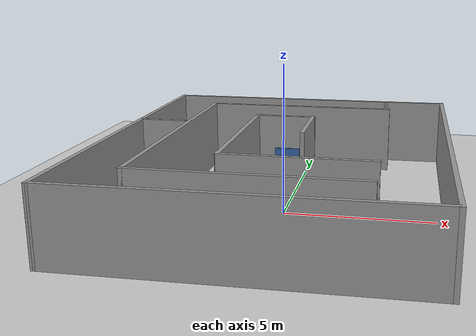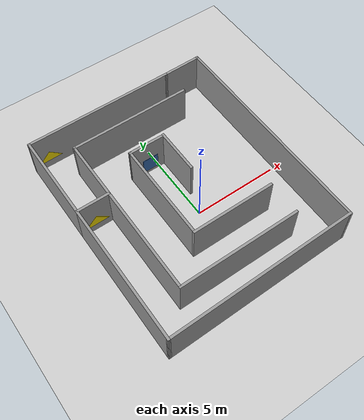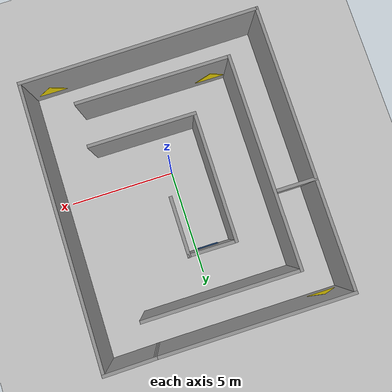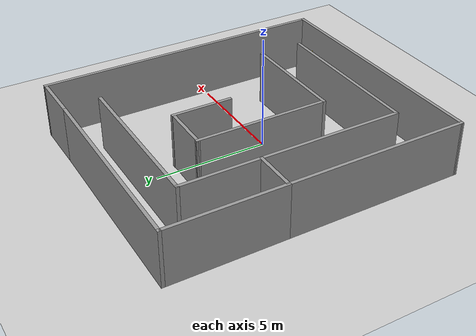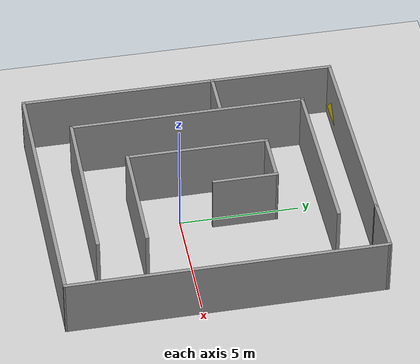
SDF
<sdf version="1.6">
 <world name="default">
  <scene><ambient>0.4 0.4 0.4 1</ambient><background>0.7 0.7 0.7 1</background><shadows>1</shadows></scene>
  <light name="sun" type="directional">
   <pose>0 0 10 0 -0 0</pose>
   <diffuse>0.8 0.8 0.8 1</diffuse>
   <specular>0.2 0.2 0.2 1</specular>
   <attenuation>
    <range>1000</range>
    <constant>0.9</constant>
    <linear>0.01</linear>
    <quadratic>0.001</quadratic>
   </attenuation>
   <direction>-0.5 0.1 -0.9</direction>
  </light>
  <model name="ground_plane">
   <static>1</static>
   <link name="link">
    <collision name="collision">
     <geometry><plane><normal>0 0 1</normal><size>100 100</size></plane></geometry>
     <surface>
      <contact><collide_bitmask>65535</collide_bitmask></contact>
      <friction><ode><mu>100</mu><mu2>50</mu2></ode></friction>
     </surface>
    </collision>
    <visual name="visual">
     <cast_shadows>0</cast_shadows>
     <geometry><plane><normal>0 0 1</normal><size>100 100</size></plane></geometry>
     <material>
      <script><uri>file://media/materials/scripts/gazebo.material</uri><name>Gazebo/Grey</name></script>
     </material>
    </visual>
   </link>
  </model>
  <physics name="default_physics" default="0" type="ode">
   <real_time_update_rate>1000</real_time_update_rate>
   <max_step_size>0.001</max_step_size>
   <real_time_factor>1</real_time_factor>
   <ode>
    <solver>
     <type>quick</type>
     <iters>150</iters>
     <precon_iters>0</precon_iters>
     <sor>1.4</sor>
     <use_dynamic_moi_rescaling>1</use_dynamic_moi_rescaling>
    </solver>
    <constraints>
     <cfm>1e-05</cfm>
     <erp>0.2</erp>
     <contact_max_correcting_vel>2000</contact_max_correcting_vel>
     <contact_surface_layer>0.01</contact_surface_layer>
    </constraints>
   </ode>
  </physics>
  <gravity>0 0 -9.8</gravity>
  <magnetic_field>6e-06 2.3e-05 -4.2e-05</magnetic_field>
  <atmosphere type="adiabatic"/>
  <spherical_coordinates>
   <surface_model>EARTH_WGS84</surface_model>
   <latitude_deg>0</latitude_deg>
   <longitude_deg>0</longitude_deg>
   <elevation>0</elevation>
   <heading_deg>0</heading_deg>
  </spherical_coordinates>
  <model name="basic_city">
   <link name="Wall_0">
    <pose>0.990731 -2.85517 0 0 -0 0</pose>
    <visual name="Wall_0_Visual">
     <pose>0 0 1.25 0 -0 0</pose>
     <geometry><box><size>5 0.15 2.5</size></box></geometry>
     <material>
      <script><uri>file://media/materials/scripts/gazebo.material</uri><name>Gazebo/Grey</name></script>
      <ambient>1 1 1 1</ambient>
      <shader type="pixel"/>
     </material>
     <meta><layer>0</layer></meta>
    </visual>
    <collision name="Wall_0_Collision">
     <pose>0 0 1.25 0 -0 0</pose>
     <geometry><box><size>5 0.15 2.5</size></box></geometry>
     <surface>
      <friction>
       <ode><mu>1</mu><mu2>1</mu2><fdir1>0 0 0</fdir1><slip1>0</slip1><slip2>0</slip2></ode>
       <torsional>
        <coefficient>1</coefficient>
        <patch_radius>0</patch_radius>
        <surface_radius>0</surface_radius>
        <use_patch_radius>1</use_patch_radius>
        <ode><slip>0</slip></ode>
       </torsional>
      </friction>
      <bounce><restitution_coefficient>0</restitution_coefficient><threshold>1e+06</threshold></bounce>
      <contact>
       <collide_without_contact>0</collide_without_contact>
       <collide_without_contact_bitmask>1</collide_without_contact_bitmask>
       <collide_bitmask>1</collide_bitmask>
       <ode>
        <soft_cfm>0</soft_cfm>
        <soft_erp>0.2</soft_erp>
        <kp>1e+13</kp>
        <kd>1</kd>
        <max_vel>0.01</max_vel>
        <min_depth>0</min_depth>
       </ode>
       <bullet>
        <split_impulse>1</split_impulse>
        <split_impulse_penetration_threshold>-0.01</split_impulse_penetration_threshold>
        <soft_cfm>0</soft_cfm>
        <soft_erp>0.2</soft_erp>
        <kp>1e+13</kp>
        <kd>1</kd>
       </bullet>
      </contact>
     </surface>
    </collision>
   </link>
   <link name="Wall_10">
    <pose>-0.134269 -4.85517 0 0 -0 0</pose>
    <visual name="Wall_10_Visual">
     <pose>0 0 1.25 0 -0 0</pose>
     <geometry><box><size>7.25 0.15 2.5</size></box></geometry>
     <material>
      <script><uri>file://media/materials/scripts/gazebo.material</uri><name>Gazebo/Grey</name></script>
      <ambient>1 1 1 1</ambient>
      <shader type="pixel"/>
     </material>
     <meta><layer>0</layer></meta>
    </visual>
    <collision name="Wall_10_Collision">
     <pose>0 0 1.25 0 -0 0</pose>
     <geometry><box><size>7.25 0.15 2.5</size></box></geometry>
     <surface>
      <friction>
       <ode><mu>1</mu><mu2>1</mu2><fdir1>0 0 0</fdir1><slip1>0</slip1><slip2>0</slip2></ode>
       <torsional>
        <coefficient>1</coefficient>
        <patch_radius>0</patch_radius>
        <surface_radius>0</surface_radius>
        <use_patch_radius>1</use_patch_radius>
        <ode><slip>0</slip></ode>
       </torsional>
      </friction>
      <bounce><restitution_coefficient>0</restitution_coefficient><threshold>1e+06</threshold></bounce>
      <contact>
       <collide_without_contact>0</collide_without_contact>
       <collide_without_contact_bitmask>1</collide_without_contact_bitmask>
       <collide_bitmask>1</collide_bitmask>
       <ode>
        <soft_cfm>0</soft_cfm>
        <soft_erp>0.2</soft_erp>
        <kp>1e+13</kp>
        <kd>1</kd>
        <max_vel>0.01</max_vel>
        <min_depth>0</min_depth>
       </ode>
       <bullet>
        <split_impulse>1</split_impulse>
        <split_impulse_penetration_threshold>-0.01</split_impulse_penetration_threshold>
        <soft_cfm>0</soft_cfm>
        <soft_erp>0.2</soft_erp>
        <kp>1e+13</kp>
        <kd>1</kd>
       </bullet>
      </contact>
     </surface>
    </collision>
   </link>
   <link name="Wall_12">
    <pose>-1.13803 6.58511 0 0 -0 3.14159</pose>
    <visual name="Wall_12_Visual">
     <pose>0 0 1.25 0 -0 0</pose>
     <geometry><box><size>9 0.15 2.5</size></box></geometry>
     <material>
      <script><uri>file://media/materials/scripts/gazebo.material</uri><name>Gazebo/Grey</name></script>
      <ambient>1 1 1 1</ambient>
      <shader type="pixel"/>
     </material>
     <meta><layer>0</layer></meta>
    </visual>
    <collision name="Wall_12_Collision">
     <pose>0 0 1.25 0 -0 0</pose>
     <geometry><box><size>9 0.15 2.5</size></box></geometry>
     <surface>
      <friction>
       <ode><mu>1</mu><mu2>1</mu2><fdir1>0 0 0</fdir1><slip1>0</slip1><slip2>0</slip2></ode>
       <torsional>
        <coefficient>1</coefficient>
        <patch_radius>0</patch_radius>
        <surface_radius>0</surface_radius>
        <use_patch_radius>1</use_patch_radius>
        <ode><slip>0</slip></ode>
       </torsional>
      </friction>
      <bounce><restitution_coefficient>0</restitution_coefficient><threshold>1e+06</threshold></bounce>
      <contact>
       <collide_without_contact>0</collide_without_contact>
       <collide_without_contact_bitmask>1</collide_without_contact_bitmask>
       <collide_bitmask>1</collide_bitmask>
       <ode>
        <soft_cfm>0</soft_cfm>
        <soft_erp>0.2</soft_erp>
        <kp>1e+13</kp>
        <kd>1</kd>
        <max_vel>0.01</max_vel>
        <min_depth>0</min_depth>
       </ode>
       <bullet>
        <split_impulse>1</split_impulse>
        <split_impulse_penetration_threshold>-0.01</split_impulse_penetration_threshold>
        <soft_cfm>0</soft_cfm>
        <soft_erp>0.2</soft_erp>
        <kp>1e+13</kp>
        <kd>1</kd>
       </bullet>
      </contact>
     </surface>
    </collision>
   </link>
   <link name="Wall_13">
    <pose>-5.56303 4.03511 0 0 0 -1.5708</pose>
    <visual name="Wall_13_Visual">
     <pose>0 0 1.25 0 -0 0</pose>
     <geometry><box><size>5.25 0.15 2.5</size></box></geometry>
     <material>
      <script><uri>file://media/materials/scripts/gazebo.material</uri><name>Gazebo/Grey</name></script>
      <ambient>1 1 1 1</ambient>
      <shader type="pixel"/>
     </material>
     <meta><layer>0</layer></meta>
    </visual>
    <collision name="Wall_13_Collision">
     <pose>0 0 1.25 0 -0 0</pose>
     <geometry><box><size>5.25 0.15 2.5</size></box></geometry>
     <surface>
      <friction>
       <ode><mu>1</mu><mu2>1</mu2><fdir1>0 0 0</fdir1><slip1>0</slip1><slip2>0</slip2></ode>
       <torsional>
        <coefficient>1</coefficient>
        <patch_radius>0</patch_radius>
        <surface_radius>0</surface_radius>
        <use_patch_radius>1</use_patch_radius>
        <ode><slip>0</slip></ode>
       </torsional>
      </friction>
      <bounce><restitution_coefficient>0</restitution_coefficient><threshold>1e+06</threshold></bounce>
      <contact>
       <collide_without_contact>0</collide_without_contact>
       <collide_without_contact_bitmask>1</collide_without_contact_bitmask>
       <collide_bitmask>1</collide_bitmask>
       <ode>
        <soft_cfm>0</soft_cfm>
        <soft_erp>0.2</soft_erp>
        <kp>1e+13</kp>
        <kd>1</kd>
        <max_vel>0.01</max_vel>
        <min_depth>0</min_depth>
       </ode>
       <bullet>
        <split_impulse>1</split_impulse>
        <split_impulse_penetration_threshold>-0.01</split_impulse_penetration_threshold>
        <soft_cfm>0</soft_cfm>
        <soft_erp>0.2</soft_erp>
        <kp>1e+13</kp>
        <kd>1</kd>
       </bullet>
      </contact>
     </surface>
    </collision>
   </link>
   <link name="Wall_14">
    <pose>-4.63803 1.48511 0 0 -0 0</pose>
    <visual name="Wall_14_Visual">
     <pose>0 0 1.25 0 -0 0</pose>
     <geometry><box><size>2 0.15 2.5</size></box></geometry>
     <material>
      <script><uri>file://media/materials/scripts/gazebo.material</uri><name>Gazebo/Grey</name></script>
      <ambient>1 1 1 1</ambient>
      <shader type="pixel"/>
     </material>
     <meta><layer>0</layer></meta>
    </visual>
    <collision name="Wall_14_Collision">
     <pose>0 0 1.25 0 -0 0</pose>
     <geometry><box><size>2 0.15 2.5</size></box></geometry>
     <surface>
      <friction>
       <ode><mu>1</mu><mu2>1</mu2><fdir1>0 0 0</fdir1><slip1>0</slip1><slip2>0</slip2></ode>
       <torsional>
        <coefficient>1</coefficient>
        <patch_radius>0</patch_radius>
        <surface_radius>0</surface_radius>
        <use_patch_radius>1</use_patch_radius>
        <ode><slip>0</slip></ode>
       </torsional>
      </friction>
      <bounce><restitution_coefficient>0</restitution_coefficient><threshold>1e+06</threshold></bounce>
      <contact>
       <collide_without_contact>0</collide_without_contact>
       <collide_without_contact_bitmask>1</collide_without_contact_bitmask>
       <collide_bitmask>1</collide_bitmask>
       <ode>
        <soft_cfm>0</soft_cfm>
        <soft_erp>0.2</soft_erp>
        <kp>1e+13</kp>
        <kd>1</kd>
        <max_vel>0.01</max_vel>
        <min_depth>0</min_depth>
       </ode>
       <bullet>
        <split_impulse>1</split_impulse>
        <split_impulse_penetration_threshold>-0.01</split_impulse_penetration_threshold>
        <soft_cfm>0</soft_cfm>
        <soft_erp>0.2</soft_erp>
        <kp>1e+13</kp>
        <kd>1</kd>
       </bullet>
      </contact>
     </surface>
    </collision>
   </link>
   <link name="Wall_16">
    <pose>-5.56303 -2.56489 0 0 0 -1.5708</pose>
    <visual name="Wall_16_Visual">
     <pose>0 0 1.25 0 -0 0</pose>
     <geometry><box><size>8.25 0.15 2.5</size></box></geometry>
     <material>
      <script><uri>file://media/materials/scripts/gazebo.material</uri><name>Gazebo/Grey</name></script>
      <ambient>1 1 1 1</ambient>
      <shader type="pixel"/>
     </material>
     <meta><layer>0</layer></meta>
    </visual>
    <collision name="Wall_16_Collision">
     <pose>0 0 1.25 0 -0 0</pose>
     <geometry><box><size>8.25 0.15 2.5</size></box></geometry>
     <surface>
      <friction>
       <ode><mu>1</mu><mu2>1</mu2><fdir1>0 0 0</fdir1><slip1>0</slip1><slip2>0</slip2></ode>
       <torsional>
        <coefficient>1</coefficient>
        <patch_radius>0</patch_radius>
        <surface_radius>0</surface_radius>
        <use_patch_radius>1</use_patch_radius>
        <ode><slip>0</slip></ode>
       </torsional>
      </friction>
      <bounce><restitution_coefficient>0</restitution_coefficient><threshold>1e+06</threshold></bounce>
      <contact>
       <collide_without_contact>0</collide_without_contact>
       <collide_without_contact_bitmask>1</collide_without_contact_bitmask>
       <collide_bitmask>1</collide_bitmask>
       <ode>
        <soft_cfm>0</soft_cfm>
        <soft_erp>0.2</soft_erp>
        <kp>1e+13</kp>
        <kd>1</kd>
        <max_vel>0.01</max_vel>
        <min_depth>0</min_depth>
       </ode>
       <bullet>
        <split_impulse>1</split_impulse>
        <split_impulse_penetration_threshold>-0.01</split_impulse_penetration_threshold>
        <soft_cfm>0</soft_cfm>
        <soft_erp>0.2</soft_erp>
        <kp>1e+13</kp>
        <kd>1</kd>
       </bullet>
      </contact>
     </surface>
    </collision>
   </link>
   <link name="Wall_17">
    <pose>-6.2e-05 -6.54788 0 0 -0 0.012045</pose>
    <visual name="Wall_17_Visual">
     <pose>0 0 1.25 0 -0 0</pose>
     <geometry><box><size>11.2766 0.15 2.5</size></box></geometry>
     <material>
      <script><uri>file://media/materials/scripts/gazebo.material</uri><name>Gazebo/Grey</name></script>
      <ambient>1 1 1 1</ambient>
      <shader type="pixel"/>
     </material>
     <meta><layer>0</layer></meta>
    </visual>
    <collision name="Wall_17_Collision">
     <pose>0 0 1.25 0 -0 0</pose>
     <geometry><box><size>11.2766 0.15 2.5</size></box></geometry>
     <surface>
      <friction>
       <ode><mu>1</mu><mu2>1</mu2><fdir1>0 0 0</fdir1><slip1>0</slip1><slip2>0</slip2></ode>
       <torsional>
        <coefficient>1</coefficient>
        <patch_radius>0</patch_radius>
        <surface_radius>0</surface_radius>
        <use_patch_radius>1</use_patch_radius>
        <ode><slip>0</slip></ode>
       </torsional>
      </friction>
      <bounce><restitution_coefficient>0</restitution_coefficient><threshold>1e+06</threshold></bounce>
      <contact>
       <collide_without_contact>0</collide_without_contact>
       <collide_without_contact_bitmask>1</collide_without_contact_bitmask>
       <collide_bitmask>1</collide_bitmask>
       <ode>
        <soft_cfm>0</soft_cfm>
        <soft_erp>0.2</soft_erp>
        <kp>1e+13</kp>
        <kd>1</kd>
        <max_vel>0.01</max_vel>
        <min_depth>0</min_depth>
       </ode>
       <bullet>
        <split_impulse>1</split_impulse>
        <split_impulse_penetration_threshold>-0.01</split_impulse_penetration_threshold>
        <soft_cfm>0</soft_cfm>
        <soft_erp>0.2</soft_erp>
        <kp>1e+13</kp>
        <kd>1</kd>
       </bullet>
      </contact>
     </surface>
    </collision>
   </link>
   <link name="Wall_18">
    <pose>5.56291 0.064812 0 0 -0 1.5708</pose>
    <visual name="Wall_18_Visual">
     <pose>0 0 1.25 0 -0 0</pose>
     <geometry><box><size>13.25 0.15 2.5</size></box></geometry>
     <material>
      <script><uri>file://media/materials/scripts/gazebo.material</uri><name>Gazebo/Grey</name></script>
      <ambient>1 1 1 1</ambient>
      <shader type="pixel"/>
     </material>
     <meta><layer>0</layer></meta>
    </visual>
    <collision name="Wall_18_Collision">
     <pose>0 0 1.25 0 -0 0</pose>
     <geometry><box><size>13.25 0.15 2.5</size></box></geometry>
     <surface>
      <friction>
       <ode><mu>1</mu><mu2>1</mu2><fdir1>0 0 0</fdir1><slip1>0</slip1><slip2>0</slip2></ode>
       <torsional>
        <coefficient>1</coefficient>
        <patch_radius>0</patch_radius>
        <surface_radius>0</surface_radius>
        <use_patch_radius>1</use_patch_radius>
        <ode><slip>0</slip></ode>
       </torsional>
      </friction>
      <bounce><restitution_coefficient>0</restitution_coefficient><threshold>1e+06</threshold></bounce>
      <contact>
       <collide_without_contact>0</collide_without_contact>
       <collide_without_contact_bitmask>1</collide_without_contact_bitmask>
       <collide_bitmask>1</collide_bitmask>
       <ode>
        <soft_cfm>0</soft_cfm>
        <soft_erp>0.2</soft_erp>
        <kp>1e+13</kp>
        <kd>1</kd>
        <max_vel>0.01</max_vel>
        <min_depth>0</min_depth>
       </ode>
       <bullet>
        <split_impulse>1</split_impulse>
        <split_impulse_penetration_threshold>-0.01</split_impulse_penetration_threshold>
        <soft_cfm>0</soft_cfm>
        <soft_erp>0.2</soft_erp>
        <kp>1e+13</kp>
        <kd>1</kd>
       </bullet>
      </contact>
     </surface>
    </collision>
   </link>
   <link name="Wall_21">
    <pose>4.42494 6.59996 0 0 -0 0.013048</pose>
    <visual name="Wall_21_Visual">
     <pose>0 0 1.25 0 -0 0</pose>
     <geometry><box><size>2.42613 0.15 2.5</size></box></geometry>
     <material>
      <script><uri>file://media/materials/scripts/gazebo.material</uri><name>Gazebo/Grey</name></script>
      <ambient>1 1 1 1</ambient>
      <shader type="pixel"/>
     </material>
     <meta><layer>0</layer></meta>
    </visual>
    <collision name="Wall_21_Collision">
     <pose>0 0 1.25 0 -0 0</pose>
     <geometry><box><size>2.42613 0.15 2.5</size></box></geometry>
     <surface>
      <friction>
       <ode><mu>1</mu><mu2>1</mu2><fdir1>0 0 0</fdir1><slip1>0</slip1><slip2>0</slip2></ode>
       <torsional>
        <coefficient>1</coefficient>
        <patch_radius>0</patch_radius>
        <surface_radius>0</surface_radius>
        <use_patch_radius>1</use_patch_radius>
        <ode><slip>0</slip></ode>
       </torsional>
      </friction>
      <bounce><restitution_coefficient>0</restitution_coefficient><threshold>1e+06</threshold></bounce>
      <contact>
       <collide_without_contact>0</collide_without_contact>
       <collide_without_contact_bitmask>1</collide_without_contact_bitmask>
       <collide_bitmask>1</collide_bitmask>
       <ode>
        <soft_cfm>0</soft_cfm>
        <soft_erp>0.2</soft_erp>
        <kp>1e+13</kp>
        <kd>1</kd>
        <max_vel>0.01</max_vel>
        <min_depth>0</min_depth>
       </ode>
       <bullet>
        <split_impulse>1</split_impulse>
        <split_impulse_penetration_threshold>-0.01</split_impulse_penetration_threshold>
        <soft_cfm>0</soft_cfm>
        <soft_erp>0.2</soft_erp>
        <kp>1e+13</kp>
        <kd>1</kd>
       </bullet>
      </contact>
     </surface>
    </collision>
   </link>
   <link name="Wall_3">
    <pose>-1.43427 0.069831 0 0 -0 1.5708</pose>
    <visual name="Wall_3_Visual">
     <pose>0 0 1.25 0 -0 0</pose>
     <geometry><box><size>6 0.15 2.5</size></box></geometry>
     <material>
      <script><uri>file://media/materials/scripts/gazebo.material</uri><name>Gazebo/Grey</name></script>
      <ambient>1 1 1 1</ambient>
      <shader type="pixel"/>
     </material>
     <meta><layer>0</layer></meta>
    </visual>
    <collision name="Wall_3_Collision">
     <pose>0 0 1.25 0 -0 0</pose>
     <geometry><box><size>6 0.15 2.5</size></box></geometry>
     <surface>
      <friction>
       <ode><mu>1</mu><mu2>1</mu2><fdir1>0 0 0</fdir1><slip1>0</slip1><slip2>0</slip2></ode>
       <torsional>
        <coefficient>1</coefficient>
        <patch_radius>0</patch_radius>
        <surface_radius>0</surface_radius>
        <use_patch_radius>1</use_patch_radius>
        <ode><slip>0</slip></ode>
       </torsional>
      </friction>
      <bounce><restitution_coefficient>0</restitution_coefficient><threshold>1e+06</threshold></bounce>
      <contact>
       <collide_without_contact>0</collide_without_contact>
       <collide_without_contact_bitmask>1</collide_without_contact_bitmask>
       <collide_bitmask>1</collide_bitmask>
       <ode>
        <soft_cfm>0</soft_cfm>
        <soft_erp>0.2</soft_erp>
        <kp>1e+13</kp>
        <kd>1</kd>
        <max_vel>0.01</max_vel>
        <min_depth>0</min_depth>
       </ode>
       <bullet>
        <split_impulse>1</split_impulse>
        <split_impulse_penetration_threshold>-0.01</split_impulse_penetration_threshold>
        <soft_cfm>0</soft_cfm>
        <soft_erp>0.2</soft_erp>
        <kp>1e+13</kp>
        <kd>1</kd>
       </bullet>
      </contact>
     </surface>
    </collision>
   </link>
   <link name="Wall_4">
    <pose>-0.374488 2.98609 0 0 0 -0.008252</pose>
    <visual name="Wall_4_Visual">
     <pose>0 0 1.25 0 -0 0</pose>
     <geometry><box><size>2.26964 0.15 2.5</size></box></geometry>
     <material>
      <script><uri>file://media/materials/scripts/gazebo.material</uri><name>Gazebo/Grey</name></script>
      <ambient>1 1 1 1</ambient>
      <shader type="pixel"/>
     </material>
     <meta><layer>0</layer></meta>
    </visual>
    <collision name="Wall_4_Collision">
     <pose>0 0 1.25 0 -0 0</pose>
     <geometry><box><size>2.26964 0.15 2.5</size></box></geometry>
     <surface>
      <friction>
       <ode><mu>1</mu><mu2>1</mu2><fdir1>0 0 0</fdir1><slip1>0</slip1><slip2>0</slip2></ode>
       <torsional>
        <coefficient>1</coefficient>
        <patch_radius>0</patch_radius>
        <surface_radius>0</surface_radius>
        <use_patch_radius>1</use_patch_radius>
        <ode><slip>0</slip></ode>
       </torsional>
      </friction>
      <bounce><restitution_coefficient>0</restitution_coefficient><threshold>1e+06</threshold></bounce>
      <contact>
       <collide_without_contact>0</collide_without_contact>
       <collide_without_contact_bitmask>1</collide_without_contact_bitmask>
       <collide_bitmask>1</collide_bitmask>
       <ode>
        <soft_cfm>0</soft_cfm>
        <soft_erp>0.2</soft_erp>
        <kp>1e+13</kp>
        <kd>1</kd>
        <max_vel>0.01</max_vel>
        <min_depth>0</min_depth>
       </ode>
       <bullet>
        <split_impulse>1</split_impulse>
        <split_impulse_penetration_threshold>-0.01</split_impulse_penetration_threshold>
        <soft_cfm>0</soft_cfm>
        <soft_erp>0.2</soft_erp>
        <kp>1e+13</kp>
        <kd>1</kd>
       </bullet>
      </contact>
     </surface>
    </collision>
   </link>
   <link name="Wall_5">
    <pose>0.685294 1.69483 0 0 0 -1.5708</pose>
    <visual name="Wall_5_Visual">
     <pose>0 0 1.25 0 -0 0</pose>
     <geometry><box><size>2.75 0.15 2.5</size></box></geometry>
     <material>
      <script><uri>file://media/materials/scripts/gazebo.material</uri><name>Gazebo/Grey</name></script>
      <ambient>1 1 1 1</ambient>
      <shader type="pixel"/>
     </material>
     <meta><layer>0</layer></meta>
    </visual>
    <collision name="Wall_5_Collision">
     <pose>0 0 1.25 0 -0 0</pose>
     <geometry><box><size>2.75 0.15 2.5</size></box></geometry>
     <surface>
      <friction>
       <ode><mu>1</mu><mu2>1</mu2><fdir1>0 0 0</fdir1><slip1>0</slip1><slip2>0</slip2></ode>
       <torsional>
        <coefficient>1</coefficient>
        <patch_radius>0</patch_radius>
        <surface_radius>0</surface_radius>
        <use_patch_radius>1</use_patch_radius>
        <ode><slip>0</slip></ode>
       </torsional>
      </friction>
      <bounce><restitution_coefficient>0</restitution_coefficient><threshold>1e+06</threshold></bounce>
      <contact>
       <collide_without_contact>0</collide_without_contact>
       <collide_without_contact_bitmask>1</collide_without_contact_bitmask>
       <collide_bitmask>1</collide_bitmask>
       <ode>
        <soft_cfm>0</soft_cfm>
        <soft_erp>0.2</soft_erp>
        <kp>1e+13</kp>
        <kd>1</kd>
        <max_vel>0.01</max_vel>
        <min_depth>0</min_depth>
       </ode>
       <bullet>
        <split_impulse>1</split_impulse>
        <split_impulse_penetration_threshold>-0.01</split_impulse_penetration_threshold>
        <soft_cfm>0</soft_cfm>
        <soft_erp>0.2</soft_erp>
        <kp>1e+13</kp>
        <kd>1</kd>
       </bullet>
      </contact>
     </surface>
    </collision>
   </link>
   <link name="Wall_8">
    <pose>-0.134269 4.99483 0 0 -0 3.14159</pose>
    <visual name="Wall_8_Visual">
     <pose>0 0 1.25 0 -0 0</pose>
     <geometry><box><size>7.25 0.15 2.5</size></box></geometry>
     <material>
      <script><uri>file://media/materials/scripts/gazebo.material</uri><name>Gazebo/Grey</name></script>
      <ambient>1 1 1 1</ambient>
      <shader type="pixel"/>
     </material>
     <meta><layer>0</layer></meta>
    </visual>
    <collision name="Wall_8_Collision">
     <pose>0 0 1.25 0 -0 0</pose>
     <geometry><box><size>7.25 0.15 2.5</size></box></geometry>
     <surface>
      <friction>
       <ode><mu>1</mu><mu2>1</mu2><fdir1>0 0 0</fdir1><slip1>0</slip1><slip2>0</slip2></ode>
       <torsional>
        <coefficient>1</coefficient>
        <patch_radius>0</patch_radius>
        <surface_radius>0</surface_radius>
        <use_patch_radius>1</use_patch_radius>
        <ode><slip>0</slip></ode>
       </torsional>
      </friction>
      <bounce><restitution_coefficient>0</restitution_coefficient><threshold>1e+06</threshold></bounce>
      <contact>
       <collide_without_contact>0</collide_without_contact>
       <collide_without_contact_bitmask>1</collide_without_contact_bitmask>
       <collide_bitmask>1</collide_bitmask>
       <ode>
        <soft_cfm>0</soft_cfm>
        <soft_erp>0.2</soft_erp>
        <kp>1e+13</kp>
        <kd>1</kd>
        <max_vel>0.01</max_vel>
        <min_depth>0</min_depth>
       </ode>
       <bullet>
        <split_impulse>1</split_impulse>
        <split_impulse_penetration_threshold>-0.01</split_impulse_penetration_threshold>
        <soft_cfm>0</soft_cfm>
        <soft_erp>0.2</soft_erp>
        <kp>1e+13</kp>
        <kd>1</kd>
       </bullet>
      </contact>
     </surface>
    </collision>
   </link>
   <link name="Wall_9">
    <pose>-3.68427 0.069831 0 0 0 -1.5708</pose>
    <visual name="Wall_9_Visual">
     <pose>0 0 1.25 0 -0 0</pose>
     <geometry><box><size>10 0.15 2.5</size></box></geometry>
     <material>
      <script><uri>file://media/materials/scripts/gazebo.material</uri><name>Gazebo/Grey</name></script>
      <ambient>1 1 1 1</ambient>
      <shader type="pixel"/>
     </material>
     <meta><layer>0</layer></meta>
    </visual>
    <collision name="Wall_9_Collision">
     <pose>0 0 1.25 0 -0 0</pose>
     <geometry><box><size>10 0.15 2.5</size></box></geometry>
     <surface>
      <friction>
       <ode><mu>1</mu><mu2>1</mu2><fdir1>0 0 0</fdir1><slip1>0</slip1><slip2>0</slip2></ode>
       <torsional>
        <coefficient>1</coefficient>
        <patch_radius>0</patch_radius>
        <surface_radius>0</surface_radius>
        <use_patch_radius>1</use_patch_radius>
        <ode><slip>0</slip></ode>
       </torsional>
      </friction>
      <bounce><restitution_coefficient>0</restitution_coefficient><threshold>1e+06</threshold></bounce>
      <contact>
       <collide_without_contact>0</collide_without_contact>
       <collide_without_contact_bitmask>1</collide_without_contact_bitmask>
       <collide_bitmask>1</collide_bitmask>
       <ode>
        <soft_cfm>0</soft_cfm>
        <soft_erp>0.2</soft_erp>
        <kp>1e+13</kp>
        <kd>1</kd>
        <max_vel>0.01</max_vel>
        <min_depth>0</min_depth>
       </ode>
       <bullet>
        <split_impulse>1</split_impulse>
        <split_impulse_penetration_threshold>-0.01</split_impulse_penetration_threshold>
        <soft_cfm>0</soft_cfm>
        <soft_erp>0.2</soft_erp>
        <kp>1e+13</kp>
        <kd>1</kd>
       </bullet>
      </contact>
     </surface>
    </collision>
   </link>
   <static>1</static>
   <pose>-0.275731 0.96517 0 0 -0 0</pose>
  </model>
  <model name="simple_square">
   <link name="link_7">
    <inertial>
     <mass>1</mass>
     <inertia>
      <ixx>0.166667</ixx>
      <ixy>0</ixy>
      <ixz>0</ixz>
      <iyy>0.166667</iyy>
      <iyz>0</iyz>
      <izz>0.166667</izz>
     </inertia>
    </inertial>
    <visual name="visual">
     <geometry><box><size>0.95 0.03 1</size></box></geometry>
     <material>
      <lighting>1</lighting>
      <script><uri>file://media/materials/scripts/gazebo.material</uri><name>Gazebo/Grey</name></script>
      <shader type="pixel"><normal_map>__default__</normal_map></shader>
      <ambient>0.204 0.396 0.643 1</ambient>
      <diffuse>0.7 0.7 0.7 1</diffuse>
      <specular>0.01 0.01 0.01 1</specular>
      <emissive>0 0 0 1</emissive>
     </material>
    </visual>
    <collision name="collision">
     <geometry><box><size>1 1 1</size></box></geometry>
     <surface>
      <friction>
       <ode><mu>1</mu><mu2>1</mu2><fdir1>0 0 0</fdir1><slip1>0</slip1><slip2>0</slip2></ode>
       <torsional>
        <coefficient>1</coefficient>
        <patch_radius>0</patch_radius>
        <surface_radius>0</surface_radius>
        <use_patch_radius>1</use_patch_radius>
        <ode><slip>0</slip></ode>
       </torsional>
      </friction>
      <bounce><restitution_coefficient>0</restitution_coefficient><threshold>1e+06</threshold></bounce>
      <contact>
       <collide_without_contact>0</collide_without_contact>
       <collide_without_contact_bitmask>1</collide_without_contact_bitmask>
       <collide_bitmask>1</collide_bitmask>
       <ode>
        <soft_cfm>0</soft_cfm>
        <soft_erp>0.2</soft_erp>
        <kp>1e+13</kp>
        <kd>1</kd>
        <max_vel>0.01</max_vel>
        <min_depth>0</min_depth>
       </ode>
       <bullet>
        <split_impulse>1</split_impulse>
        <split_impulse_penetration_threshold>-0.01</split_impulse_penetration_threshold>
        <soft_cfm>0</soft_cfm>
        <soft_erp>0.2</soft_erp>
        <kp>1e+13</kp>
        <kd>1</kd>
       </bullet>
      </contact>
     </surface>
    </collision>
   </link>
   <static>0</static>
   <pose>-0.56 3.85 0.75 0 -0 0</pose>
  </model>
  <model name="triangle">
   <link name="link_8">
    <inertial>
     <mass>1</mass>
     <inertia>
      <ixx>0.166667</ixx>
      <ixy>0</ixy>
      <ixz>0</ixz>
      <iyy>0.166667</iyy>
      <iyz>0</iyz>
      <izz>0.166667</izz>
     </inertia>
    </inertial>
    <visual name="visual">
     <geometry>
      <mesh><uri>/home/twil5596/Downloads/Pizza World/triangle.dae</uri><scale>0.25 0.25 0.25</scale></mesh>
     </geometry>
     <material>
      <lighting>1</lighting>
      <script><uri>file://media/materials/scripts/gazebo.material</uri><name>Gazebo/Grey</name></script>
      <shader type="pixel"><normal_map>__default__</normal_map></shader>
      <ambient>0.929 0.831 0 1</ambient>
      <diffuse>0.7 0.7 0.7 1</diffuse>
      <specular>0.01 0.01 0.01 1</specular>
      <emissive>0 0 0 1</emissive>
     </material>
    </visual>
    <collision name="collision">
     <geometry>
      <mesh><uri>/home/twil5596/Downloads/Pizza World/triangle.dae</uri><scale>1 1 1</scale></mesh>
     </geometry>
     <surface>
      <friction>
       <ode><mu>1</mu><mu2>1</mu2><fdir1>0 0 0</fdir1><slip1>0</slip1><slip2>0</slip2></ode>
       <torsional>
        <coefficient>1</coefficient>
        <patch_radius>0</patch_radius>
        <surface_radius>0</surface_radius>
        <use_patch_radius>1</use_patch_radius>
        <ode><slip>0</slip></ode>
       </torsional>
      </friction>
      <bounce><restitution_coefficient>0</restitution_coefficient><threshold>1e+06</threshold></bounce>
      <contact>
       <collide_without_contact>0</collide_without_contact>
       <collide_without_contact_bitmask>1</collide_without_contact_bitmask>
       <collide_bitmask>1</collide_bitmask>
       <ode>
        <soft_cfm>0</soft_cfm>
        <soft_erp>0.2</soft_erp>
        <kp>1e+13</kp>
        <kd>1</kd>
        <max_vel>0.01</max_vel>
        <min_depth>0</min_depth>
       </ode>
       <bullet>
        <split_impulse>1</split_impulse>
        <split_impulse_penetration_threshold>-0.01</split_impulse_penetration_threshold>
        <soft_cfm>0</soft_cfm>
        <soft_erp>0.2</soft_erp>
        <kp>1e+13</kp>
        <kd>1</kd>
       </bullet>
      </contact>
     </surface>
    </collision>
   </link>
   <static>0</static>
   <pose>-4.9 2.39 0.5 0 0.769999 0</pose>
  </model>
  <model name="triangle_clone">
   <link name="link_8">
    <inertial>
     <mass>1</mass>
     <inertia>
      <ixx>0.166667</ixx>
      <ixy>0</ixy>
      <ixz>0</ixz>
      <iyy>0.166667</iyy>
      <iyz>0</iyz>
      <izz>0.166667</izz>
     </inertia>
    </inertial>
    <visual name="visual">
     <geometry>
      <mesh><uri>/home/twil5596/Downloads/Pizza World/triangle.dae</uri><scale>0.25 0.25 0.25</scale></mesh>
     </geometry>
     <material>
      <lighting>1</lighting>
      <script><uri>file://media/materials/scripts/gazebo.material</uri><name>Gazebo/Grey</name></script>
      <shader type="pixel"><normal_map>__default__</normal_map></shader>
      <ambient>0.929 0.831 0 1</ambient>
      <diffuse>0.7 0.7 0.7 1</diffuse>
      <specular>0.01 0.01 0.01 1</specular>
      <emissive>0 0 0 1</emissive>
     </material>
    </visual>
    <collision name="collision">
     <geometry>
      <mesh><uri>/home/twil5596/Downloads/Pizza World/triangle.dae</uri><scale>1 1 1</scale></mesh>
     </geometry>
     <surface>
      <friction>
       <ode><mu>1</mu><mu2>1</mu2><fdir1>0 0 0</fdir1><slip1>0</slip1><slip2>0</slip2></ode>
       <torsional>
        <coefficient>1</coefficient>
        <patch_radius>0</patch_radius>
        <surface_radius>0</surface_radius>
        <use_patch_radius>1</use_patch_radius>
        <ode><slip>0</slip></ode>
       </torsional>
      </friction>
      <bounce><restitution_coefficient>0</restitution_coefficient><threshold>1e+06</threshold></bounce>
      <contact>
       <collide_without_contact>0</collide_without_contact>
       <collide_without_contact_bitmask>1</collide_without_contact_bitmask>
       <collide_bitmask>1</collide_bitmask>
       <ode>
        <soft_cfm>0</soft_cfm>
        <soft_erp>0.2</soft_erp>
        <kp>1e+13</kp>
        <kd>1</kd>
        <max_vel>0.01</max_vel>
        <min_depth>0</min_depth>
       </ode>
       <bullet>
        <split_impulse>1</split_impulse>
        <split_impulse_penetration_threshold>-0.01</split_impulse_penetration_threshold>
        <soft_cfm>0</soft_cfm>
        <soft_erp>0.2</soft_erp>
        <kp>1e+13</kp>
        <kd>1</kd>
       </bullet>
      </contact>
     </surface>
    </collision>
   </link>
   <static>0</static>
   <pose>-4.89721 7.49505 0.5 0 0.769999 0</pose>
  </model>
  <model name="triangle_clone_0">
   <link name="link_8">
    <inertial>
     <mass>1</mass>
     <inertia>
      <ixx>0.166667</ixx>
      <ixy>0</ixy>
      <ixz>0</ixz>
      <iyy>0.166667</iyy>
      <iyz>0</iyz>
      <izz>0.166667</izz>
     </inertia>
    </inertial>
    <visual name="visual">
     <geometry>
      <mesh><uri>/home/twil5596/Downloads/Pizza World/triangle.dae</uri><scale>0.25 0.25 0.25</scale></mesh>
     </geometry>
     <material>
      <lighting>1</lighting>
      <script><uri>file://media/materials/scripts/gazebo.material</uri><name>Gazebo/Grey</name></script>
      <shader type="pixel"><normal_map>__default__</normal_map></shader>
      <ambient>0.929 0.831 0 1</ambient>
      <diffuse>0.7 0.7 0.7 1</diffuse>
      <specular>0.01 0.01 0.01 1</specular>
      <emissive>0 0 0 1</emissive>
     </material>
    </visual>
    <collision name="collision">
     <geometry>
      <mesh><uri>/home/twil5596/Downloads/Pizza World/triangle.dae</uri><scale>1 1 1</scale></mesh>
     </geometry>
     <surface>
      <friction>
       <ode><mu>1</mu><mu2>1</mu2><fdir1>0 0 0</fdir1><slip1>0</slip1><slip2>0</slip2></ode>
       <torsional>
        <coefficient>1</coefficient>
        <patch_radius>0</patch_radius>
        <surface_radius>0</surface_radius>
        <use_patch_radius>1</use_patch_radius>
        <ode><slip>0</slip></ode>
       </torsional>
      </friction>
      <bounce><restitution_coefficient>0</restitution_coefficient><threshold>1e+06</threshold></bounce>
      <contact>
       <collide_without_contact>0</collide_without_contact>
       <collide_without_contact_bitmask>1</collide_without_contact_bitmask>
       <collide_bitmask>1</collide_bitmask>
       <ode>
        <soft_cfm>0</soft_cfm>
        <soft_erp>0.2</soft_erp>
        <kp>1e+13</kp>
        <kd>1</kd>
        <max_vel>0.01</max_vel>
        <min_depth>0</min_depth>
       </ode>
       <bullet>
        <split_impulse>1</split_impulse>
        <split_impulse_penetration_threshold>-0.01</split_impulse_penetration_threshold>
        <soft_cfm>0</soft_cfm>
        <soft_erp>0.2</soft_erp>
        <kp>1e+13</kp>
        <kd>1</kd>
       </bullet>
      </contact>
     </surface>
    </collision>
   </link>
   <static>0</static>
   <pose>4.30343 -5.44071 0.5 0 0.769999 0</pose>
  </model>
  <model name="triangle_clone_1">
   <link name="link_8">
    <inertial>
     <mass>1</mass>
     <inertia>
      <ixx>0.166667</ixx>
      <ixy>0</ixy>
      <ixz>0</ixz>
      <iyy>0.166667</iyy>
      <iyz>0</iyz>
      <izz>0.166667</izz>
     </inertia>
    </inertial>
    <visual name="visual">
     <geometry>
      <mesh><uri>/home/twil5596/Downloads/Pizza World/triangle.dae</uri><scale>0.25 0.25 0.25</scale></mesh>
     </geometry>
     <material>
      <lighting>1</lighting>
      <script><uri>file://media/materials/scripts/gazebo.material</uri><name>Gazebo/Grey</name></script>
      <shader type="pixel"><normal_map>__default__</normal_map></shader>
      <ambient>0.929 0.831 0 1</ambient>
      <diffuse>0.7 0.7 0.7 1</diffuse>
      <specular>0.01 0.01 0.01 1</specular>
      <emissive>0 0 0 1</emissive>
     </material>
    </visual>
    <collision name="collision">
     <geometry><mesh><uri>/my_simulations/triangle.dae</uri><scale>1 1 1</scale></mesh></geometry>
     <surface>
      <friction>
       <ode><mu>1</mu><mu2>1</mu2><fdir1>0 0 0</fdir1><slip1>0</slip1><slip2>0</slip2></ode>
       <torsional>
        <coefficient>1</coefficient>
        <patch_radius>0</patch_radius>
        <surface_radius>0</surface_radius>
        <use_patch_radius>1</use_patch_radius>
        <ode><slip>0</slip></ode>
       </torsional>
      </friction>
      <bounce><restitution_coefficient>0</restitution_coefficient><threshold>1e+06</threshold></bounce>
      <contact>
       <collide_without_contact>0</collide_without_contact>
       <collide_without_contact_bitmask>1</collide_without_contact_bitmask>
       <collide_bitmask>1</collide_bitmask>
       <ode>
        <soft_cfm>0</soft_cfm>
        <soft_erp>0.2</soft_erp>
        <kp>1e+13</kp>
        <kd>1</kd>
        <max_vel>0.01</max_vel>
        <min_depth>0</min_depth>
       </ode>
       <bullet>
        <split_impulse>1</split_impulse>
        <split_impulse_penetration_threshold>-0.01</split_impulse_penetration_threshold>
        <soft_cfm>0</soft_cfm>
        <soft_erp>0.2</soft_erp>
        <kp>1e+13</kp>
        <kd>1</kd>
       </bullet>
      </contact>
     </surface>
    </collision>
   </link>
   <static>0</static>
   <pose>-3.12405 -3.79284 0.5 0 0.769999 0</pose>
  </model>
 </world>
</sdf>
